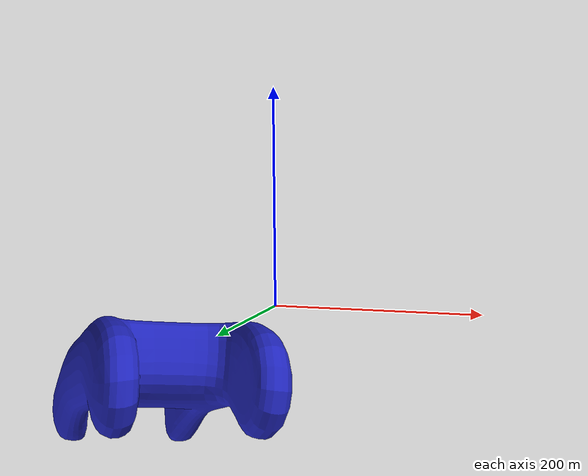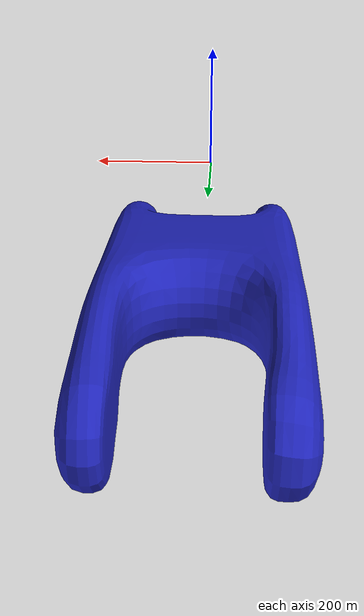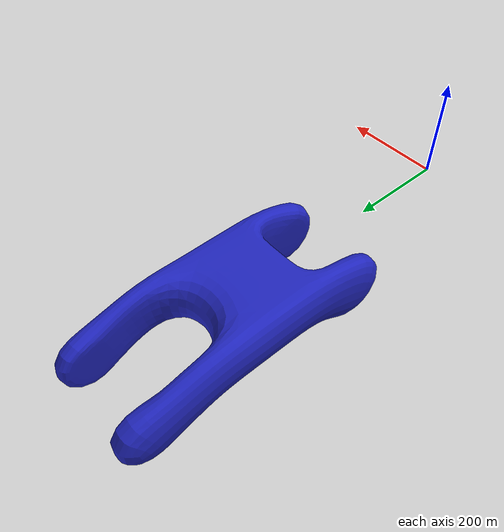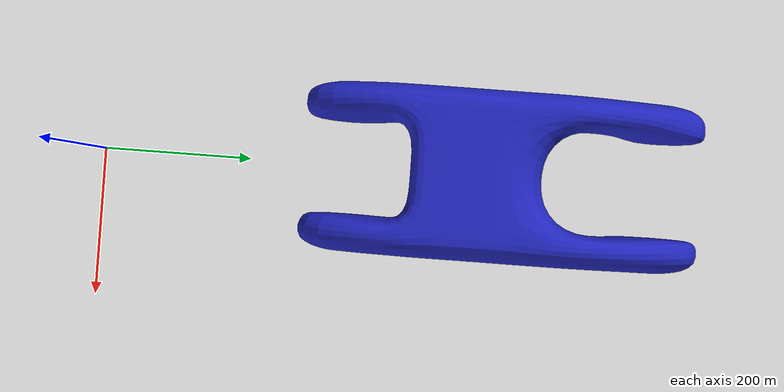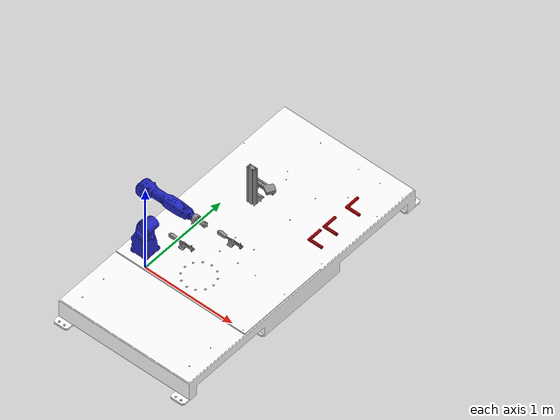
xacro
<?xml version="1.0" ?>
<robot xmlns:xacro="http://ros.org/wiki/xacro" name="cogniman_robot">
    <!-- GAZEBO -->
     <gazebo>
        <self_collide>1</self_collide>
        <plugin filename="gz-sim-joint-state-publisher-system" name="gz::sim::systems::JointStatePublisher"/>
    </gazebo>

    <xacro:include filename="$(find cogniman_scene_description)/urdf/cogniman_gazebo.xacro"/>

    <xacro:include filename="$(find screw_gripper_description)/urdf/screw_gripper.xacro"/>

    <xacro:include filename="$(find positionning_tool)/urdf/positionning_tool.xacro"/>
    <xacro:equerre prefix="1"/>
    <xacro:equerre prefix="2"/>
    <xacro:equerre prefix="3"/>

    <xacro:include filename="$(find toggle_clamp)/urdf/toggle_clamp.xacro"/>
    <xacro:clamp prefix="1"/>
    <xacro:clamp prefix="2"/>

    <xacro:include filename="$(find profilo_description)/urdf/profilo_with_support.xacro"/>

    <xacro:include filename="$(find plateforme_description)/urdf/plateforme.xacro"/>

    <xacro:include filename="$(find motoman_gp7_support)/urdf/gp7_macro.xacro" />

	<xacro:motoman_gp7 prefix=""/>

    <link name="world"/>

    <link name="tcp"/>

    <!-- ======  TCP ====== -->
    <joint name="tool0_to_tcp" type="fixed">
        <origin xyz="0 0 0" rpy="0 0 0"/>
        <parent link="tool0"/>
        <child link="tcp"/>
    </joint>

    <!-- ======  ROBOT ====== -->
    <joint name="world_to_robot" type="fixed">
        <origin xyz="0 0 0.24" rpy="0 0 0"/>
        <parent link="world"/>
        <child link="base_link"/>
    </joint>

    <!-- ======  PLATEFORME ====== -->
    <joint name="robot_to_plateforme" type="fixed">
        <origin xyz="0 0 0" rpy="0 0 3.14"/>
        <parent link="base_link"/>
        <child link="plateforme"/>
    </joint>

    <!-- ======  PROFILO ====== -->
    <joint name="robot_to_profilo" type="fixed">
        <origin xyz="0.3 1 0" rpy="0 0 0"/>
        <parent link="base_link"/>
        <child link="profilo"/>
    </joint>

    <!-- ======  TOOL ====== -->
    <joint name="tool0_to_screw_gripper" type="fixed">
        <origin xyz="0 0 0" rpy="0 0 0"/>
        <parent link="tool0"/>
        <child link="screw_gripper"/>
    </joint>

    <!-- ======  CLAMP ====== -->
    <joint name="robot_to_clamp1" type="fixed">
        <origin xyz="0.5 0.5 0" rpy="0 0 0"/>
        <parent link="base_link"/>
        <child link="clamp_1"/>
    </joint>

    <joint name="robot_to_clamp2" type="fixed">
        <origin xyz="0.2 0.2 0" rpy="0 0 0"/>
        <parent link="base_link"/>
        <child link="clamp_2"/>
    </joint>

    <!-- ======  EQUERRE ====== -->
    <joint name="robot_to_equerre1" type="fixed">
        <origin xyz="1 1 0" rpy="0 0 0"/>
        <parent link="base_link"/>
        <child link="equerre_1"/>
    </joint>

        <joint name="robot_to_equerre2" type="fixed">
        <origin xyz="1 1.2 0" rpy="0 0 0"/>
        <parent link="base_link"/>
        <child link="equerre_2"/>
    </joint>

        <joint name="robot_to_equerre3" type="fixed">
        <origin xyz="1 1.5 0" rpy="0 0 0"/>
        <parent link="base_link"/>
        <child link="equerre_3"/>
    </joint>

</robot>

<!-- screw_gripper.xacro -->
<robot xmlns:xacro="http://ros.org/wiki/xacro">

    <xacro:include filename="$(find xacro_materials)/urdf/materials.xacro"/>
    <xacro:include filename="$(find xacro_inertia)/urdf/inertia_table.xacro"/>
    <link name="screw_gripper">
        <visual>
            <geometry>
                <mesh filename="package://screw_gripper_description/mesh/visual/screw_gripper.stl"/>
            </geometry>
            <xacro:grey_steel/>
        </visual>
        <collision>
            <geometry>
                <mesh filename="package://screw_gripper_description/mesh/collision/screw_gripper_collision.stl"/>
            </geometry>
        </collision>
        <inertial>
          <xacro:box_inertia m="0.5" x="0.05" y="0.15" z="0.05"/>
        </inertial>
    </link>

    <link name="tcp_screw_gripper"/>

    <joint name="screw_gripper_to_tcp" type="fixed">
        <origin xyz="0 0 0.2" rpy="0 0 0"/>
        <parent link="screw_gripper"/>
        <child link="tcp_screw_gripper"/>
    </joint>

</robot>

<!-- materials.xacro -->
<robot xmlns:xacro="http://ros.org/wiki/xacro">
  <xacro:include filename="$(find xacro_materials)/urdf/colors.xacro"/>

  <!-- ===PERSO=== -->
    <xacro:macro name="white">
    <material name="">
      <color rgba="${white}"/>
    </material>
  </xacro:macro>

  <xacro:macro name="grey_light">
    <material name="">
      <color rgba="${grey_light}"/>
    </material>
  </xacro:macro>

  <xacro:macro name="grey_steel">
    <material name="">
      <color rgba="${grey_steel}"/>
    </material>
  </xacro:macro>

    <xacro:macro name="black">
    <material name="">
      <color rgba="${black}"/>
    </material>
  </xacro:macro>

    <xacro:macro name="red">
    <material name="">
      <color rgba="${red}"/>
    </material>
  </xacro:macro>

    <xacro:macro name="pastel_yellow">
    <material name="">
      <color rgba="${pastel_yellow}"/>
    </material>
  </xacro:macro>

    <!-- ===FROM MOTOMAN=== -->

  <xacro:macro name="material_yaskawa_blue">
    <material name="">
      <color rgba="${color_yaskawa_blue}"/>
    </material>
  </xacro:macro>

  <xacro:macro name="material_yaskawa_white">
    <material name="">
      <color rgba="${color_yaskawa_white}"/>
    </material>
  </xacro:macro>

  <!-- not an official colour, but used in some old xacro:macros -->
  <xacro:macro name="material_yaskawa_yellow">
    <material name="">
      <color rgba="${color_yaskawa_yellow}"/>
    </material>
  </xacro:macro>

  <!-- not an official colour, but used in some old xacro:macros -->
  <xacro:macro name="material_yaskawa_silver">
    <material name="">
      <color rgba="${color_yaskawa_silver}"/>
    </material>
  </xacro:macro>
</robot>

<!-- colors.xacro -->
<robot xmlns:xacro="http://ros.org/wiki/xacro">

    <!-- ===PERSO=== -->
    <xacro:property name="white" value="${255/255} ${255/255} ${255/255} 1.0"/>

    <xacro:property name="grey_light" value="${200/255} ${200/255} ${200/255} 1.0"/>

    <xacro:property name="grey_steel" value="${145/255} ${145/255} ${145/255} 1.0"/>

    <xacro:property name="black" value="${255/255} ${255/255} ${255/255} 1.0"/>

    <xacro:property name="red" value="${196/255} ${0/255} ${7/255} 1.0"/>

    <xacro:property name="pastel_yellow" value="${255/255} ${251/255} ${101/255} 1.0"/>

    <!-- ===FROM MOTOMAN=== -->

  <xacro:property name="color_yaskawa_blue" value="${33/255} ${38/255} ${191/255} 1.0"/>

  <xacro:property name="color_yaskawa_white" value="0.99 0.99 0.99 1"/>

  <!-- not an official colour, but used in some old xacro:macros -->
  <xacro:property name="color_yaskawa_yellow" value="0 1 1 1"/>

  <!-- not an official colour, but used in some old xacro:macros -->
  <xacro:property name="color_yaskawa_silver" value="0.8 0.8 0.8 1"/>

</robot>

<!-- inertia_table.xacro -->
<robot name="inertias" xmlns:xacro="http://www.ros.org/wiki/xacro">

    <xacro:macro name="cylinder_inertia" params="m r h">
        <inertia  ixx="${m*(3*r*r+h*h)/12}" ixy = "0" ixz = "0"
                    iyy="${m*(3*r*r+h*h)/12}" iyz = "0"
                    izz="${m*r*r/2}" />
        <mass value="${m}" />
        <origin xyz="0 0 0"/>
    </xacro:macro>

    <xacro:macro name="box_inertia" params="m x y z">
            <inertia  ixx="${m*(y*y+z*z)/12}" ixy = "0" ixz = "0"
                    iyy="${m*(x*x+z*z)/12}" iyz = "0"
                    izz="${m*(x*x+y*y)/12}" />
            <mass value="${m}" />
            <origin xyz="0 0 0"/>
    </xacro:macro>

    <xacro:macro name="sphere_inertia" params="m r">
        <mass value="${m/10}" />
        <inertia  ixx="${2*m*r*r/5}" ixy = "0" ixz = "0"
                iyy="${2*m*r*r/5}" iyz = "0"
                izz="${2*m*r*r/5}" />
        <origin xyz="0 0 0"/>

    </xacro:macro>
</robot>

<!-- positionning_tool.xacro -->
<robot xmlns:xacro="http://ros.org/wiki/xacro">
    <xacro:macro name="equerre" params="prefix">
    <xacro:include filename="$(find xacro_inertia)/urdf/inertia_table.xacro"/>
    <xacro:include filename="$(find xacro_materials)/urdf/materials.xacro"/>

    <link name="equerre_${prefix}">
        <visual>
            <geometry>
                <mesh filename="package://positionning_tool/mesh/visual/equerre.stl"/>
            </geometry>
            <xacro:red/>
        </visual>
        <collision>
            <geometry>
                <mesh filename="package://positionning_tool/mesh/collision/equerre_collision.stl"/>
            </geometry>
        </collision>
        <inertial>
          <xacro:box_inertia m="0.5" x="0.05" y="0.05" z="0.05"/>
        </inertial>

    </link>
    </xacro:macro>
</robot>

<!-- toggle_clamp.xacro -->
<robot xmlns:xacro="http://ros.org/wiki/xacro">
    <xacro:macro name="clamp" params="prefix">

    <xacro:include filename="$(find xacro_materials)/urdf/materials.xacro"/>
    <xacro:include filename="$(find xacro_inertia)/urdf/inertia_table.xacro"/>
    <link name="clamp_${prefix}">
        <visual>
            <geometry>
                <mesh filename="package://toggle_clamp/mesh/visual/clamp.stl"/>
            </geometry>
            <xacro:grey_steel/>
        </visual>
        <collision>
            <geometry>
                <mesh filename="package://toggle_clamp/mesh/collision/clamp_collision.stl"/>
            </geometry>
        </collision>
        <inertial>
          <xacro:box_inertia m="0.6" x="0.05" y="0.15" z="0.05"/>
        </inertial>
    </link>
    </xacro:macro>
</robot>

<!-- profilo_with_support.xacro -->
<robot xmlns:xacro="http://ros.org/wiki/xacro">
    <xacro:include filename="$(find xacro_inertia)/urdf/inertia_table.xacro"/>
    <xacro:include filename="$(find xacro_materials)/urdf/materials.xacro"/>

    <link name="profilo">
        <visual>
            <geometry>
                <mesh filename="package://profilo_description/mesh/visual/profilo_with_support.stl"/>
            </geometry>
            <xacro:grey_steel/>
        </visual>
        <collision>
            <geometry>
                <mesh filename="package://profilo_description/mesh/collision/profilo_with_support_collision.stl"/>
            </geometry>
        </collision>
        <inertial>
          <xacro:box_inertia m="4" x="0.05" y="0.05" z="0.05"/>
        </inertial>
    </link>
</robot>

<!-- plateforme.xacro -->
<robot xmlns:xacro="http://ros.org/wiki/xacro">
    <xacro:include filename="$(find xacro_materials)/urdf/materials.xacro"/>
    <xacro:include filename="$(find xacro_inertia)/urdf/inertia_table.xacro"/>
    <link name="plateforme">
        <visual>
            <geometry>
                <mesh filename="package://plateforme_description/mesh/visual/plateform.stl"/>
            </geometry>
            <xacro:white/>
        </visual>
        <collision>
            <geometry>
                <mesh filename="package://plateforme_description/mesh/collision/plateform_collision.stl"/>
            </geometry>
        </collision>
        <inertial>
          <xacro:box_inertia m="200" x="2" y="1" z="0.25"/>
        </inertial>

    </link>
</robot>

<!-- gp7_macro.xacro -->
<robot xmlns:xacro="http://ros.org/wiki/xacro">
<xacro:macro name="motoman_gp7" params="prefix">
    <xacro:include filename="$(find motoman_resources)/urdf/common_materials.xacro"/>
    <xacro:include filename="$(find xacro_inertia)/urdf/inertia_table.xacro"/>
    <!-- link list -->
    <link name="${prefix}base_link">
        <visual>
            <geometry>
                <mesh filename="package://motoman_gp7_support/meshes/visual/gp7_base_link.stl"/>
            </geometry>
            <xacro:material_yaskawa_blue/>
        </visual>
        <collision>
            <geometry>
                <mesh filename="package://motoman_gp7_support/meshes/collision/gp7_base_link.stl"/>
            </geometry>
        </collision>
        <inertial>
            <xacro:cylinder_inertia m="8" r="0.095" h="0.15"/>
        </inertial>
    </link>

    <link name="${prefix}link_1_s">
        <visual>
            <geometry>
                <mesh filename="package://motoman_gp7_support/meshes/visual/gp7_link_1_s.stl"/>
            </geometry>
            <xacro:material_yaskawa_blue/>
        </visual>
        <collision>
            <geometry>
                <mesh filename="package://motoman_gp7_support/meshes/collision/gp7_link_1_s.stl"/>
            </geometry>
        </collision>
        <inertial>
            <xacro:cylinder_inertia m="5" r="0.095" h="0.18"/>
        </inertial>
    </link>
    <link name="${prefix}link_2_l">
        <visual>
            <geometry>
                <mesh filename="package://motoman_gp7_support/meshes/visual/gp7_link_2_l.stl"/>
            </geometry>
            <xacro:material_yaskawa_blue/>
        </visual>
        <collision>
            <geometry>
                <mesh filename="package://motoman_gp7_support/meshes/collision/gp7_link_2_l.stl"/>
            </geometry>
        </collision>
        <inertial>
            <xacro:cylinder_inertia m="10" r="0.095" h="0.26"/>
        </inertial>

    </link>
    <link name="${prefix}link_3_u">
        <visual>
            <geometry>
                <mesh filename="package://motoman_gp7_support/meshes/visual/gp7_link_3_u.stl"/>
            </geometry>
            <xacro:material_yaskawa_blue/>
        </visual>
        <collision>
            <geometry>
                <mesh filename="package://motoman_gp7_support/meshes/collision/gp7_link_3_u.stl"/>
            </geometry>
        </collision>
        <inertial>
            <xacro:cylinder_inertia m="4" r="0.095" h="0.1"/>
        </inertial>

    </link>
    <link name="${prefix}link_4_r">
        <visual>
            <geometry>
                <mesh filename="package://motoman_gp7_support/meshes/visual/gp7_link_4_r.stl"/>
            </geometry>
            <xacro:material_yaskawa_blue/>
        </visual>
        <collision>
            <geometry>
                <mesh filename="package://motoman_gp7_support/meshes/collision/gp7_link_4_r.stl"/>
            </geometry>
        </collision>
        <inertial>
            <xacro:cylinder_inertia m="6" r="0.095" h="0.19"/>
        </inertial>

    </link>
    <link name="${prefix}link_5_b">
        <visual>
            <geometry>
                <mesh filename="package://motoman_gp7_support/meshes/visual/gp7_link_5_b.stl"/>
            </geometry>
            <xacro:material_yaskawa_blue/>
        </visual>
        <collision>
            <geometry>
                <mesh filename="package://motoman_gp7_support/meshes/collision/gp7_link_5_b.stl"/>
            </geometry>
        </collision>
        <inertial>
            <xacro:cylinder_inertia m="3" r="0.095" h="0.1"/>
        </inertial>

    </link>
    <link name="${prefix}link_6_t">
        <visual>
            <geometry>
                <mesh filename="package://motoman_gp7_support/meshes/visual/gp7_link_6_t.stl"/>
            </geometry>
            <xacro:material_yaskawa_blue/>
        </visual>
        <collision>
            <geometry>
                <mesh filename="package://motoman_gp7_support/meshes/collision/gp7_link_6_t.stl"/>
            </geometry>
        </collision>
        <inertial>
            <xacro:cylinder_inertia m="2" r="0.095" h="0.072"/>
        </inertial>

    </link>
    <link name="${prefix}tool0"/>
    <!-- end of link list -->

    <!-- joint list -->
    <joint name="${prefix}joint_1_s" type="revolute">
        <parent link="${prefix}base_link"/>
        <child link="${prefix}link_1_s"/>
        <origin xyz="0 0 0.330" rpy="0 0 0" />
        <axis xyz="0 0 1" />
        <limit lower="-2.9670" upper="2.9670" effort="212.66" velocity="6.5448"/>
    </joint>
    <joint name="${prefix}joint_2_l" type="revolute">
        <parent link="${prefix}link_1_s"/>
        <child link="${prefix}link_2_l"/>
        <origin xyz="0.040 0 0" rpy="0 0 0" />
        <axis xyz="0 1 0" />
        <limit lower="-1.1344" upper="2.5307" effort="205.80" velocity="5.4977"/>
    </joint>
    <joint name="${prefix}joint_3_u" type="revolute">
        <parent link="${prefix}link_2_l"/>
        <child link="${prefix}link_3_u"/>
        <origin xyz="0 0 0.445" rpy="0 0 0" />
        <axis xyz="0 -1 0" />
        <limit lower="-1.2217" upper="3.3161" effort="106.82" velocity="7.1558"/>
    </joint>
    <joint name="${prefix}joint_4_r" type="revolute">
        <parent link="${prefix}link_3_u"/>
        <child link="${prefix}link_4_r"/>
        <origin xyz="0.440 0 0.040" rpy="0 0 0" />
        <axis xyz="-1 0 0" />
        <limit lower="-3.3161" upper="3.3161" effort="55.86" velocity="9.5993"/>
    </joint>
    <joint name="${prefix}joint_5_b" type="revolute">
        <parent link="${prefix}link_4_r"/>
        <child link="${prefix}link_5_b"/>
        <origin xyz="0 0 0" rpy="0 0 0" />
        <axis xyz="0 -1 0" />
        <limit lower="-2.3561" upper="2.3561" effort="32.68" velocity="9.5993"/>
    </joint>
    <joint name="${prefix}joint_6_t" type="revolute">
        <parent link="${prefix}link_5_b"/>
        <child link="${prefix}link_6_t"/>
        <origin xyz="0 0 0" rpy="0 0 0" />
        <axis xyz="-1 0 0" />
        <limit lower="-6.2944" upper="6.2944" effort="22.54" velocity="17.4845"/>
    </joint>
    <joint name="${prefix}joint_6_t-tool0" type="fixed">
        <origin xyz="0.080 0 0" rpy="3.1415926 -1.570796 0"/>
        <parent link="${prefix}link_6_t"/>
        <child link="${prefix}tool0"/>
    </joint>
    <!-- end of joint list -->

    <!-- ROS base_link to Robot Manufacturer World Coordinates transform -->
    <link name="${prefix}base" />
    <joint name="${prefix}base_link-base" type="fixed">
        <origin xyz="0 0 0.330" rpy="0 0 0"/>
        <parent link="${prefix}base_link"/>
        <child link="${prefix}base"/>
    </joint>

    </xacro:macro>
</robot>
